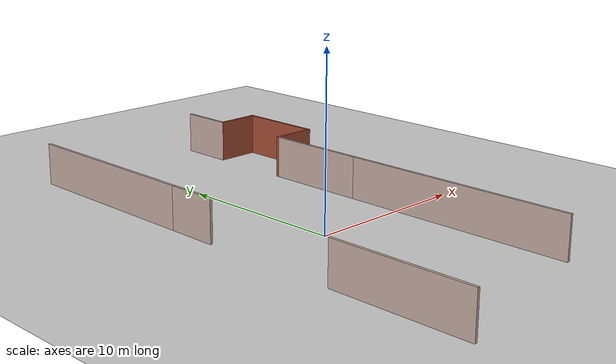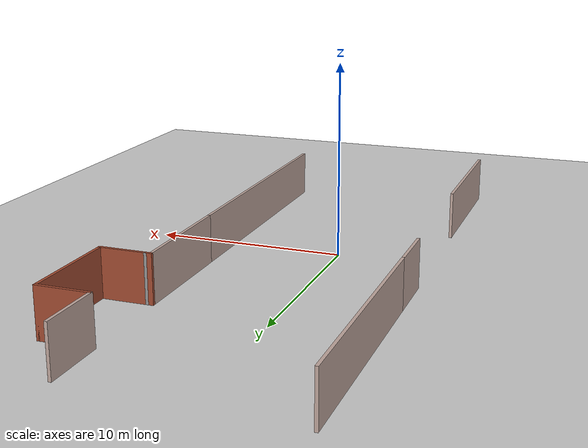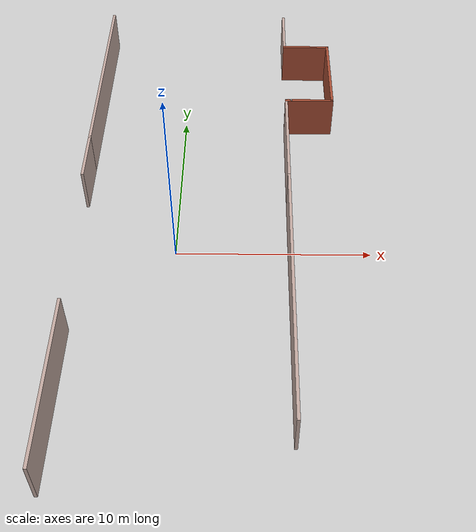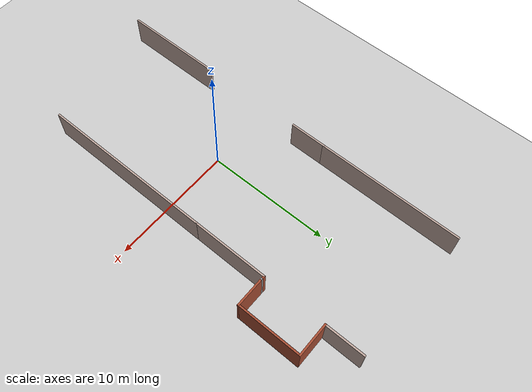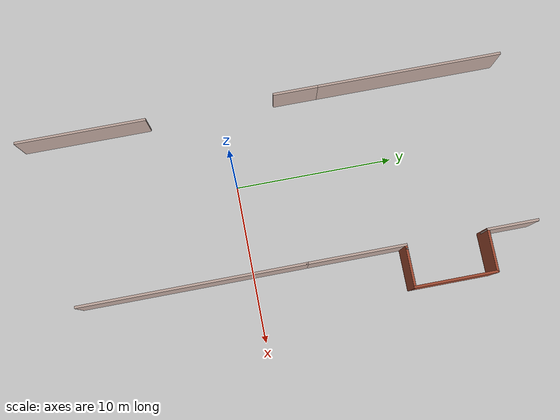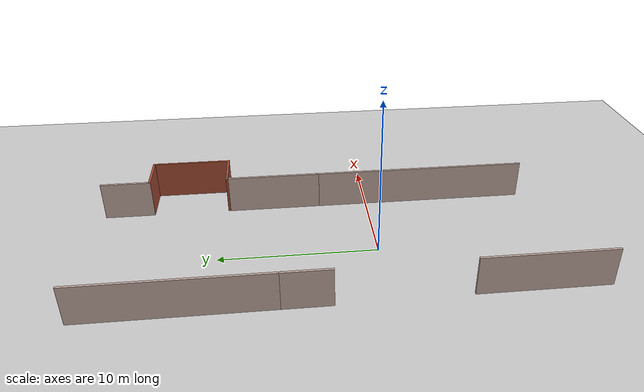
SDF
<sdf version="1.4">
 <world name="default">
  <include><uri>model://ground_plane</uri></include>
  <include><uri>model://sun</uri></include>
  <include><uri>model://corridor_test</uri><name>corridor_test</name><pose>1.736 2.3905 0 0 0 0</pose></include>
 </world>
</sdf>

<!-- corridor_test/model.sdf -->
<sdf version='1.6'>
  <model name='corridor_test'>
    <pose frame=''>1.736 -5.6095 0 0 -0 0</pose>
    <link name='Wall_11'>
      <collision name='Wall_11_Collision'>
        <geometry>
          <box>
            <size>3.25 0.15 2.5</size>
          </box>
        </geometry>
        <pose frame=''>0 0 1.25 0 -0 0</pose>
      </collision>
      <visual name='Wall_11_Visual'>
        <pose frame=''>0 0 1.25 0 -0 0</pose>
        <geometry>
          <box>
            <size>3.25 0.15 2.5</size>
          </box>
        </geometry>
        <material>
          <script>
            <uri>file://media/materials/scripts/gazebo.material</uri>
            <name>Gazebo/Grey</name>
          </script>
          <ambient>0.760784 0.662745 0.627451 1</ambient>
        </material>
        <meta>
          <layer>0</layer>
        </meta>
      </visual>
      <pose frame=''>4.096 13.6745 0 0 0 -1.5708</pose>
    </link>
    <link name='Wall_12'>
      <collision name='Wall_12_Collision'>
        <geometry>
          <box>
            <size>2.75 0.15 2.5</size>
          </box>
        </geometry>
        <pose frame=''>0 0 1.25 0 -0 0</pose>
      </collision>
      <visual name='Wall_12_Visual'>
        <pose frame=''>0 0 1.25 0 -0 0</pose>
        <geometry>
          <box>
            <size>2.75 0.15 2.5</size>
          </box>
        </geometry>
        <material>
          <script>
            <uri>file://media/materials/scripts/gazebo.material</uri>
            <name>Gazebo/Bricks</name>
          </script>
          <ambient>1 1 1 1</ambient>
        </material>
        <meta>
          <layer>0</layer>
        </meta>
      </visual>
      <pose frame=''>5.396 12.1245 0 0 -0 0</pose>
    </link>
    <link name='Wall_13'>
      <collision name='Wall_13_Collision'>
        <geometry>
          <box>
            <size>5.25 0.15 2.5</size>
          </box>
        </geometry>
        <pose frame=''>0 0 1.25 0 -0 0</pose>
      </collision>
      <visual name='Wall_13_Visual'>
        <pose frame=''>0 0 1.25 0 -0 0</pose>
        <geometry>
          <box>
            <size>5.25 0.15 2.5</size>
          </box>
        </geometry>
        <material>
          <script>
            <uri>file://media/materials/scripts/gazebo.material</uri>
            <name>Gazebo/Bricks</name>
          </script>
          <ambient>1 1 1 1</ambient>
        </material>
        <meta>
          <layer>0</layer>
        </meta>
      </visual>
      <pose frame=''>6.696 9.5745 0 0 0 -1.5708</pose>
    </link>
    <link name='Wall_17'>
      <collision name='Wall_17_Collision'>
        <geometry>
          <box>
            <size>0.15 0.15 2.5</size>
          </box>
        </geometry>
        <pose frame=''>0 0 1.25 0 -0 0</pose>
      </collision>
      <visual name='Wall_17_Visual'>
        <pose frame=''>0 0 1.25 0 -0 0</pose>
        <geometry>
          <box>
            <size>0.15 0.15 2.5</size>
          </box>
        </geometry>
        <material>
          <script>
            <uri>file://media/materials/scripts/gazebo.material</uri>
            <name>Gazebo/Grey</name>
          </script>
          <ambient>1 1 1 1</ambient>
        </material>
        <meta>
          <layer>0</layer>
        </meta>
      </visual>
      <pose frame=''>4.34588 7.02457 0 0 -0 0</pose>
    </link>
    <link name='Wall_19'>
      <collision name='Wall_19_Collision'>
        <geometry>
          <box>
            <size>2.75 0.15 2.5</size>
          </box>
        </geometry>
        <pose frame=''>0 0 1.25 0 -0 0</pose>
      </collision>
      <visual name='Wall_19_Visual'>
        <pose frame=''>0 0 1.25 0 -0 0</pose>
        <geometry>
          <box>
            <size>2.75 0.15 2.5</size>
          </box>
        </geometry>
        <material>
          <script>
            <uri>file://media/materials/scripts/gazebo.material</uri>
            <name>Gazebo/Bricks</name>
          </script>
          <ambient>1 1 1 1</ambient>
        </material>
        <meta>
          <layer>0</layer>
        </meta>
      </visual>
      <pose frame=''>5.396 7.0245 0 0 -0 3.14159</pose>
    </link>
    <link name='Wall_20'>
      <collision name='Wall_20_Collision'>
        <geometry>
          <box>
            <size>6.25 0.15 2.5</size>
          </box>
        </geometry>
        <pose frame=''>0 0 1.25 0 -0 0</pose>
      </collision>
      <visual name='Wall_20_Visual'>
        <pose frame=''>0 0 1.25 0 -0 0</pose>
        <geometry>
          <box>
            <size>6.25 0.15 2.5</size>
          </box>
        </geometry>
        <material>
          <script>
            <uri>file://media/materials/scripts/gazebo.material</uri>
            <name>Gazebo/Grey</name>
          </script>
          <ambient>0.760784 0.662745 0.627451 1</ambient>
        </material>
        <meta>
          <layer>0</layer>
        </meta>
      </visual>
      <pose frame=''>4.096 3.9745 0 0 0 -1.5708</pose>
    </link>
    <link name='Wall_21'>
      <collision name='Wall_21_Collision'>
        <geometry>
          <box>
            <size>14.25 0.15 2.5</size>
          </box>
        </geometry>
        <pose frame=''>0 0 1.25 0 -0 0</pose>
      </collision>
      <visual name='Wall_21_Visual'>
        <pose frame=''>0 0 1.25 0 -0 0</pose>
        <geometry>
          <box>
            <size>14.25 0.15 2.5</size>
          </box>
        </geometry>
        <material>
          <script>
            <uri>file://media/materials/scripts/gazebo.material</uri>
            <name>Gazebo/Grey</name>
          </script>
          <ambient>0.760784 0.662745 0.627451 1</ambient>
        </material>
        <meta>
          <layer>0</layer>
        </meta>
      </visual>
      <pose frame=''>4.096 -6.1255 0 0 0 -1.5708</pose>
    </link>
    <link name='Wall_27'>
      <collision name='Wall_27_Collision'>
        <geometry>
          <box>
            <size>8.25 0.15 2.5</size>
          </box>
        </geometry>
        <pose frame=''>0 0 1.25 0 -0 0</pose>
      </collision>
      <visual name='Wall_27_Visual'>
        <pose frame=''>0 0 1.25 0 -0 0</pose>
        <geometry>
          <box>
            <size>8.25 0.15 2.5</size>
          </box>
        </geometry>
        <material>
          <script>
            <uri>file://media/materials/scripts/gazebo.material</uri>
            <name>Gazebo/Grey</name>
          </script>
          <ambient>0.760784 0.662745 0.627451 1</ambient>
        </material>
        <meta>
          <layer>0</layer>
        </meta>
      </visual>
      <pose frame=''>-6.588 -11.3395 0 0 0 -1.5708</pose>
    </link>
    <link name='Wall_4'>
      <collision name='Wall_4_Collision'>
        <geometry>
          <box>
            <size>3 0.15 2.5</size>
          </box>
        </geometry>
        <pose frame=''>0 0 1.25 0 -0 0</pose>
      </collision>
      <visual name='Wall_4_Visual'>
        <pose frame=''>0 0 1.25 0 -0 0</pose>
        <geometry>
          <box>
            <size>3 0.15 2.5</size>
          </box>
        </geometry>
        <material>
          <script>
            <uri>file://media/materials/scripts/gazebo.material</uri>
            <name>Gazebo/Grey</name>
          </script>
          <ambient>0.760784 0.662745 0.627451 1</ambient>
        </material>
        <meta>
          <layer>0</layer>
        </meta>
      </visual>
      <pose frame=''>-6.696 2.3645 0 0 -0 1.5708</pose>
    </link>
    <link name='Wall_5'>
      <collision name='Wall_5_Collision'>
        <geometry>
          <box>
            <size>11.75 0.15 2.5</size>
          </box>
        </geometry>
        <pose frame=''>0 0 1.25 0 -0 0</pose>
      </collision>
      <visual name='Wall_5_Visual'>
        <pose frame=''>0 0 1.25 0 -0 0</pose>
        <geometry>
          <box>
            <size>11.75 0.15 2.5</size>
          </box>
        </geometry>
        <material>
          <script>
            <uri>file://media/materials/scripts/gazebo.material</uri>
            <name>Gazebo/Grey</name>
          </script>
          <ambient>0.760784 0.662745 0.627451 1</ambient>
        </material>
        <meta>
          <layer>0</layer>
        </meta>
      </visual>
      <pose frame=''>-6.696 9.5895 0 0 -0 1.5708</pose>
    </link>
    <static>1</static>
  </model>
</sdf>
